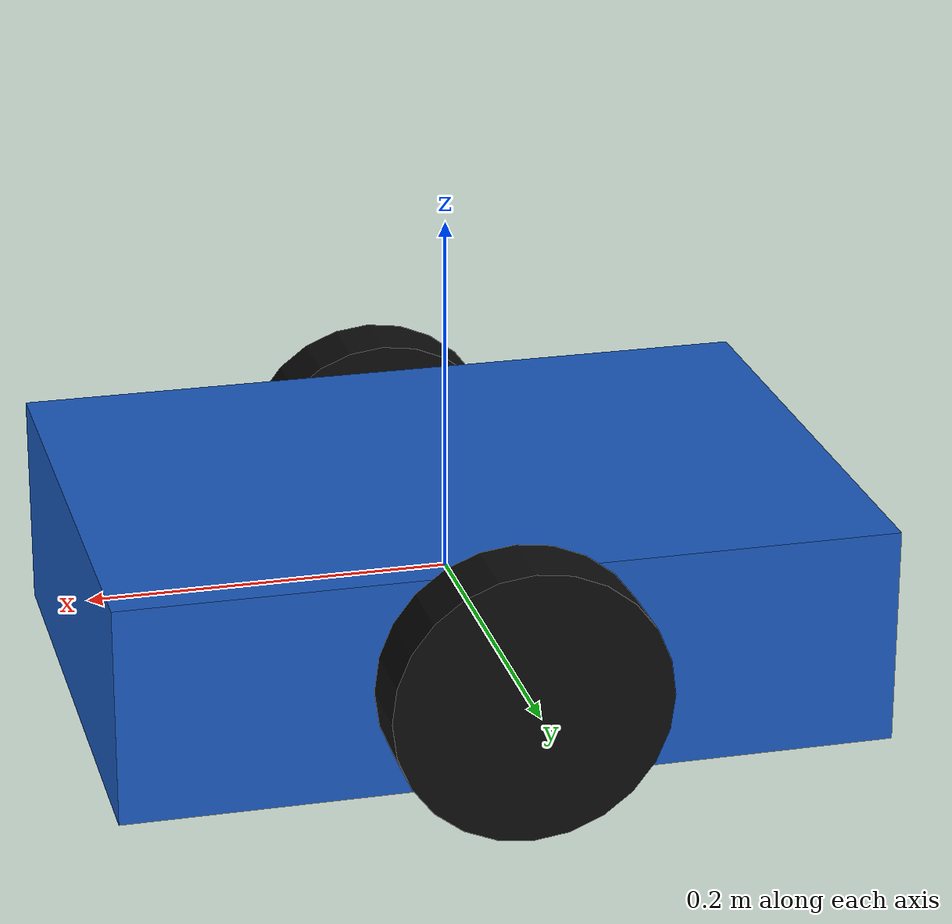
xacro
<?xml version="1.0"?>
<robot xmlns:xacro="http://www.ros.org/wiki/xacro" name="ai_robot">
  <xacro:arg name="controllers_file" default=""/>
  <xacro:arg name="enable_lidar" default="false"/>
  <xacro:arg name="enable_camera" default="false"/>
  <xacro:arg name="enable_imu" default="false"/>
  <xacro:property name="base_length" value="0.42"/>
  <xacro:property name="base_width" value="0.30"/>
  <xacro:property name="base_height" value="0.12"/>
  <xacro:property name="base_mass" value="8.0"/>
  <xacro:property name="wheel_radius" value="0.075"/>
  <xacro:property name="wheel_width" value="0.04"/>
  <xacro:property name="wheel_mass" value="0.40"/>
  <xacro:property name="wheel_separation" value="0.34"/>

  <xacro:macro name="box_inertia" params="mass x y z">
    <inertia
      ixx="${mass * (y*y + z*z) / 12.0}" ixy="0" ixz="0"
      iyy="${mass * (x*x + z*z) / 12.0}" iyz="0"
      izz="${mass * (x*x + y*y) / 12.0}"/>
  </xacro:macro>

  <xacro:macro name="wheel" params="side reflect">
    <link name="${side}_wheel_link">
      <visual>
        <origin rpy="1.57079632679 0 0"/>
        <geometry><cylinder radius="${wheel_radius}" length="${wheel_width}"/></geometry>
        <material name="wheel_black"><color rgba="0.05 0.05 0.05 1"/></material>
      </visual>
      <collision>
        <origin rpy="1.57079632679 0 0"/>
        <geometry><cylinder radius="${wheel_radius}" length="${wheel_width}"/></geometry>
      </collision>
      <inertial>
        <origin rpy="1.57079632679 0 0"/>
        <mass value="${wheel_mass}"/>
        <inertia ixx="${wheel_mass * (3*wheel_radius*wheel_radius + wheel_width*wheel_width) / 12.0}"
                 ixy="0" ixz="0" iyy="${wheel_mass * wheel_radius*wheel_radius / 2.0}"
                 iyz="0" izz="${wheel_mass * (3*wheel_radius*wheel_radius + wheel_width*wheel_width) / 12.0}"/>
      </inertial>
    </link>
    <joint name="${side}_wheel_joint" type="continuous">
      <parent link="base_link"/>
      <child link="${side}_wheel_link"/>
      <origin xyz="0 ${reflect * wheel_separation / 2.0} 0"/>
      <axis xyz="0 1 0"/>
      <limit effort="8.0" velocity="8.0"/>
      <dynamics damping="0.1" friction="0.1"/>
    </joint>
  </xacro:macro>

  <link name="base_footprint"/>
  <joint name="base_footprint_joint" type="fixed">
    <parent link="base_link"/>
    <child link="base_footprint"/>
    <origin xyz="0 0 ${-wheel_radius}"/>
  </joint>

  <link name="base_link">
    <visual>
      <geometry><box size="${base_length} ${base_width} ${base_height}"/></geometry>
      <material name="base_blue"><color rgba="0.10 0.35 0.75 1"/></material>
    </visual>
    <collision><geometry><box size="${base_length} ${base_width} ${base_height}"/></geometry></collision>
    <inertial>
      <mass value="${base_mass}"/>
      <xacro:box_inertia mass="${base_mass}" x="${base_length}" y="${base_width}" z="${base_height}"/>
    </inertial>
  </link>

  <xacro:wheel side="left" reflect="1"/>
  <xacro:wheel side="right" reflect="-1"/>

  <link name="caster_link">
    <visual><geometry><sphere radius="0.035"/></geometry></visual>
    <collision><geometry><sphere radius="0.035"/></geometry></collision>
    <inertial><mass value="0.10"/><inertia ixx="0.000049" ixy="0" ixz="0" iyy="0.000049" iyz="0" izz="0.000049"/></inertial>
  </link>
  <joint name="caster_joint" type="fixed">
    <parent link="base_link"/><child link="caster_link"/><origin xyz="-0.15 0 -0.04"/>
  </joint>

  <!-- Generic sensor mounting datum retained as the parent of M3 sensor frames. -->
  <link name="sensor_link"/>
  <joint name="sensor_joint" type="fixed">
    <parent link="base_link"/><child link="sensor_link"/><origin xyz="0.10 0 0.10"/>
  </joint>

  <!-- M3 frozen simulated sensor extrinsics; REP-103 body axes: x forward, y left, z up. -->
  <link name="laser_link"/>
  <joint name="laser_joint" type="fixed">
    <parent link="sensor_link"/><child link="laser_link"/><origin xyz="0 0 0.06" rpy="0 0 0"/>
  </joint>

  <link name="camera_link"/>
  <joint name="camera_joint" type="fixed">
    <parent link="sensor_link"/><child link="camera_link"/><origin xyz="0.08 0 0.02" rpy="0 0 0"/>
  </joint>
  <!-- Optical convention: z forward, x right, y down. -->
  <link name="camera_optical_link"/>
  <joint name="camera_optical_joint" type="fixed">
    <parent link="camera_link"/><child link="camera_optical_link"/>
    <origin xyz="0 0 0" rpy="-1.57079632679 0 -1.57079632679"/>
  </joint>

  <link name="imu_link"/>
  <joint name="imu_joint" type="fixed">
    <parent link="sensor_link"/><child link="imu_link"/><origin xyz="0 0 0" rpy="0 0 0"/>
  </joint>

  <xacro:if value="$(arg enable_lidar)">
    <gazebo reference="laser_link">
      <sensor name="lidar" type="gpu_lidar">
        <topic>sim/scan</topic><always_on>true</always_on><update_rate>10</update_rate>
        <visualize>false</visualize>
        <lidar>
          <scan><horizontal><samples>360</samples><resolution>1</resolution>
            <min_angle>-3.14159265359</min_angle><max_angle>3.14159265359</max_angle>
          </horizontal></scan>
          <range><min>0.10</min><max>12.0</max><resolution>0.01</resolution></range>
          <noise><type>gaussian</type><mean>0.0</mean><stddev>0.01</stddev></noise>
        </lidar>
      </sensor>
    </gazebo>
  </xacro:if>

  <xacro:if value="$(arg enable_camera)">
    <gazebo reference="camera_link">
      <sensor name="camera" type="camera">
        <topic>sim/camera/image_raw</topic><always_on>true</always_on><update_rate>15</update_rate>
        <visualize>false</visualize>
        <camera>
          <horizontal_fov>1.0471975512</horizontal_fov>
          <image><width>320</width><height>240</height><format>R8G8B8</format></image>
          <clip><near>0.05</near><far>30.0</far></clip>
        </camera>
      </sensor>
    </gazebo>
  </xacro:if>

  <xacro:if value="$(arg enable_imu)">
    <gazebo reference="imu_link">
      <sensor name="imu" type="imu">
        <topic>sim/imu/data</topic><always_on>true</always_on><update_rate>100</update_rate>
        <visualize>false</visualize>
      </sensor>
    </gazebo>
  </xacro:if>

  <ros2_control name="GazeboSimSystem" type="system">
    <hardware><plugin>gz_ros2_control/GazeboSimSystem</plugin></hardware>
    <joint name="left_wheel_joint">
      <command_interface name="velocity"><param name="min">-8.0</param><param name="max">8.0</param></command_interface>
      <state_interface name="position"/><state_interface name="velocity"/>
    </joint>
    <joint name="right_wheel_joint">
      <command_interface name="velocity"><param name="min">-8.0</param><param name="max">8.0</param></command_interface>
      <state_interface name="position"/><state_interface name="velocity"/>
    </joint>
  </ros2_control>

  <gazebo>
    <plugin filename="libgz_ros2_control-system.so"
            name="gz_ros2_control::GazeboSimROS2ControlPlugin">
      <parameters>$(arg controllers_file)</parameters>
    </plugin>
  </gazebo>
</robot>
